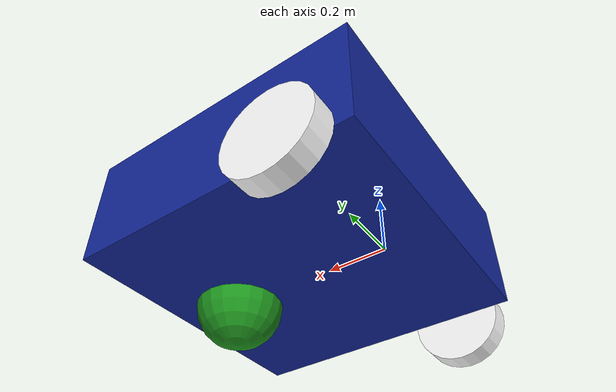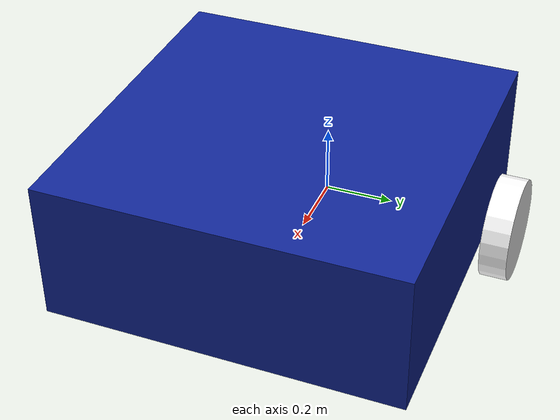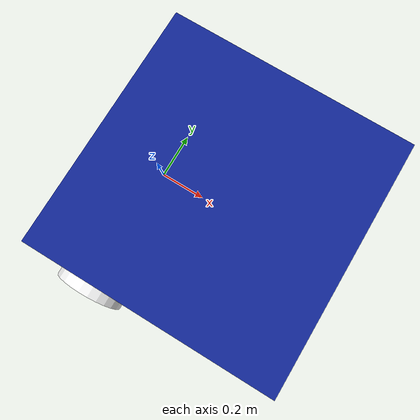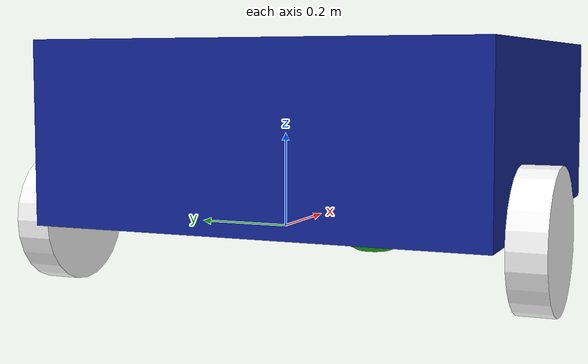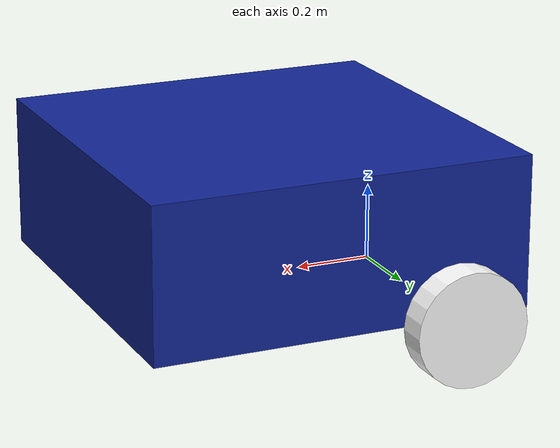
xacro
<?xml version="1.0"?>
<robot xmlns:xacro="http://www.ros.org/wiki/xacro" name="robot_car">
    <xacro:include filename="robot_car_include.xacro" />
    <link name="base_link"></link>

    <joint name="chassis_joint" type="fixed">
        <parent link="base_link" />
        <child link="chassis" />
        <origin xyz="-0.2 0 0" rpy="0 0 0" />
    </joint>

    <link name="chassis">
        <visual>
            <origin xyz="0.5 0 0.2" rpy="0 0 0" />
            <geometry>
                <box size="1 1 0.4" />
            </geometry>
            <material name="blue" />
        </visual>

        <collision>
            <origin xyz="0.5 0 0.2" rpy="0 0 0" />
            <geometry>
                <box size="1 1 0.4" />
            </geometry>
        </collision>

        <xacro:inertial_box mass="2" x="1" y="1" z="0.4">
            <origin xyz="0.5 0 0.2" rpy="0 0 0" />
        </xacro:inertial_box>
    </link>

    <joint name="left_wheel_link" type="continuous">
        <parent link="base_link" />
        <child link="left_wheel" />
        <origin xyz="0 0.55 0" rpy="-${pi/2} 0 0" />
        <axis xyz="0 0 1" />
    </joint>

    <link name="left_wheel">
        <visual>
            <origin xyz="0 0 0" rpy="0 0 0" />
            <geometry>
                <cylinder radius="0.15" length="0.08" />
            </geometry>
            <material name="white" />
        </visual>

        <collision>
            <origin xyz="0 0 0" rpy="0 0 0" />
            <geometry>
                <cylinder radius="0.15" length="0.08" />
            </geometry>
        </collision>

        <xacro:inertial_cylinder mass="0.4" length="0.08" radius="0.15">
            <origin xyz="0 0 0" rpy="0 0 0" />
        </xacro:inertial_cylinder>
    </link>

    <joint name="right_wheel_link" type="continuous">
        <parent link="base_link" />
        <child link="right_wheel" />
        <origin xyz="0 -0.55 0" rpy="${pi/2} 0 0" />
        <axis xyz="0 0 1" />
    </joint>

    <link name="right_wheel">
        <visual>
            <origin xyz="0 0 0" rpy="0 0 0" />
            <geometry>
                <cylinder radius="0.15" length="0.08" />
            </geometry>
            <material name="white" />
        </visual>

        <collision>
            <origin xyz="0 0 0" rpy="0 0 0" />
            <geometry>
                <cylinder radius="0.15" length="0.08" />
            </geometry>
        </collision>

        <xacro:inertial_cylinder mass="0.2" length="0.08" radius="0.15">
            <origin xyz="0 0 0" rpy="0 0 0" />
        </xacro:inertial_cylinder>
    </link>

    <joint name="castor_joint" type="fixed">
        <parent link="chassis" />
        <child link="castor_wheel" />
        <origin xyz="0.78 0 0" rpy="0 0 0" />
    </joint>

    <link name="castor_wheel">
        <visual>
            <origin xyz="0 0 0" rpy="0 0 0" />
            <geometry>
                <sphere radius="0.15" />
            </geometry>
            <material name="green" />
        </visual>

        <collision>
            <origin xyz="0 0 0" rpy="0 0 0" />
            <geometry>
                <sphere radius="0.15" />
            </geometry>
        </collision>

        <xacro:inertial_sphere mass="0.4" radius="0.15">
            <origin xyz="0 0 0" rpy="0 0 0" />
        </xacro:inertial_sphere>
    </link>
</robot>

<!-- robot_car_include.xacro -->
<robot xmlns:xacro="http://www.ros.org/wiki/xacro">

    <material name="white">
        <color rgba="1 1 1 1" />
    </material>
    <material name="blue">
        <color rgba="0.07 0.15 0.59 1" />
    </material>
    <material name="green">
        <color rgba="0.12 0.59 0.12 1" />
    </material>

    <xacro:macro name="inertial_sphere" params="mass radius *origin">
        <inertial>
            <xacro:insert_block name="origin" />
            <mass value="${mass}" />
            <inertia ixx="${(2/5) * mass * (radius*radius)}" ixy="0.0" ixz="0.0"
                iyy="${(2/5) * mass * (radius*radius)}" iyz="0.0"
                izz="${(2/5) * mass * (radius*radius)}" />
        </inertial>
    </xacro:macro>

    <xacro:macro name="inertial_box" params="mass x y z *origin">
        <inertial>
            <xacro:insert_block name="origin" />
            <mass value="${mass}" />
            <inertia ixx="${(1/12) * mass * (y*y+z*z)}" ixy="0.0" ixz="0.0"
                iyy="${(1/12) * mass * (x*x+z*z)}" iyz="0.0"
                izz="${(1/12) * mass * (x*x+y*y)}" />
        </inertial>
    </xacro:macro>

    <xacro:macro name="inertial_cylinder" params="mass length radius *origin">
        <inertial>
            <xacro:insert_block name="origin" />
            <mass value="${mass}" />
            <inertia ixx="${(1/12) * mass * (3*radius*radius + length*length)}" ixy="0.0" ixz="0.0"
                iyy="${(1/12) * mass * (3*radius*radius + length*length)}" iyz="0.0"
                izz="${(1/2) * mass * (radius*radius)}" />
        </inertial>
    </xacro:macro>

</robot>
